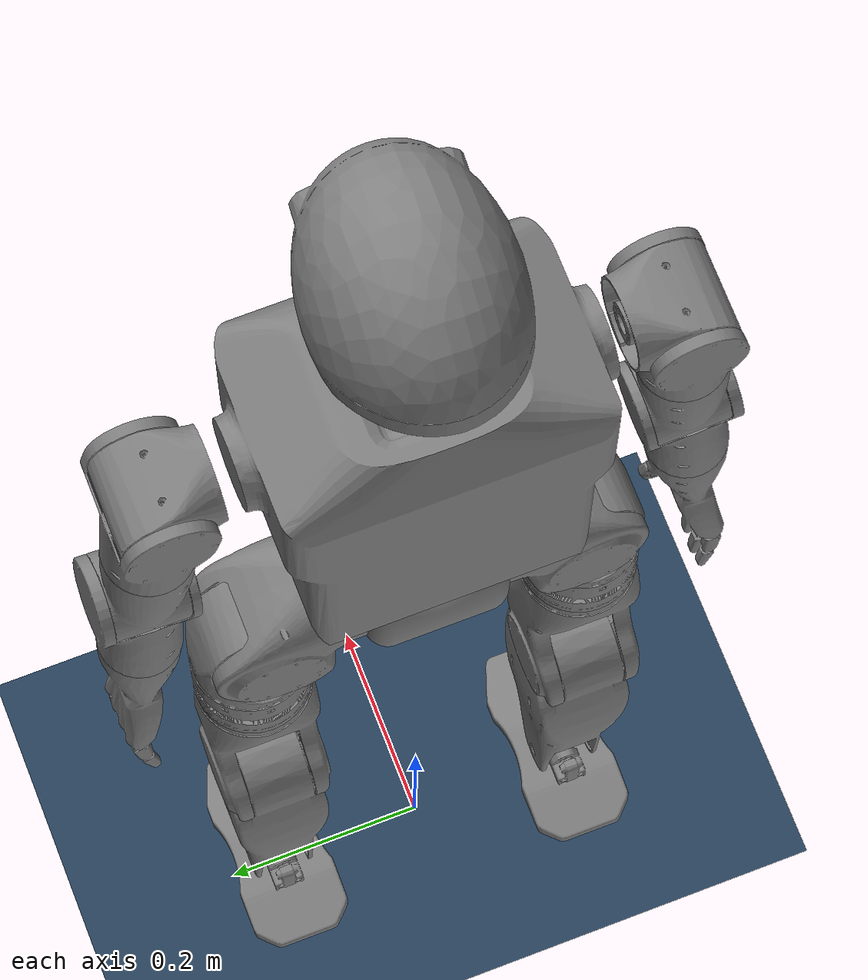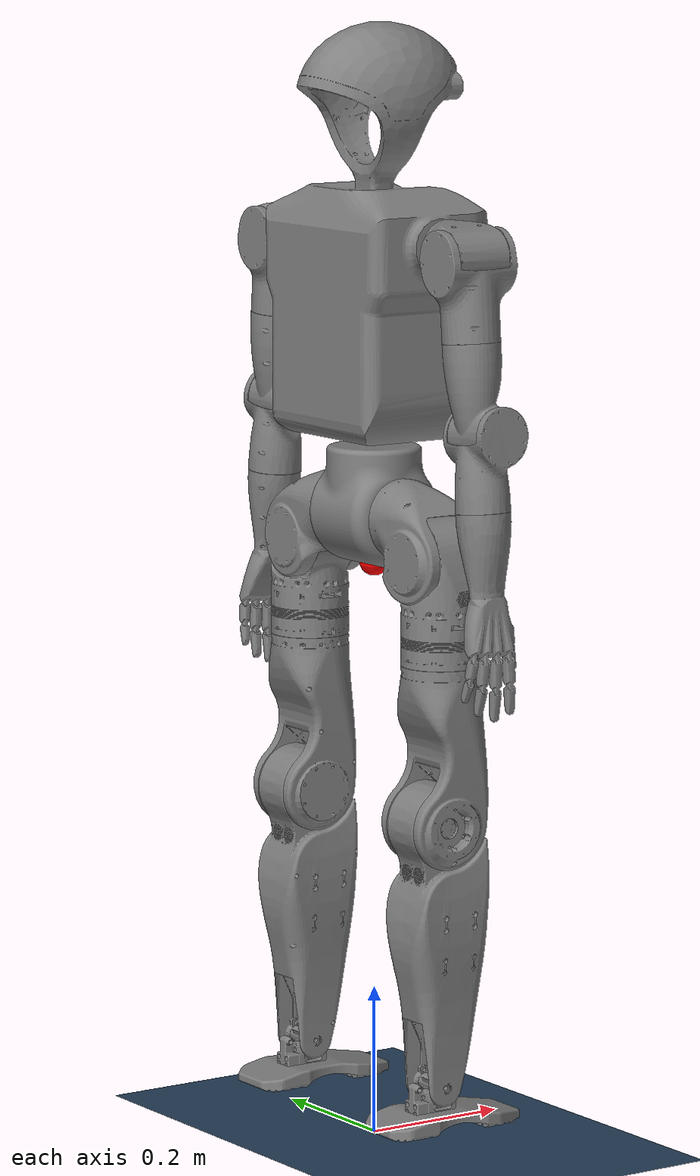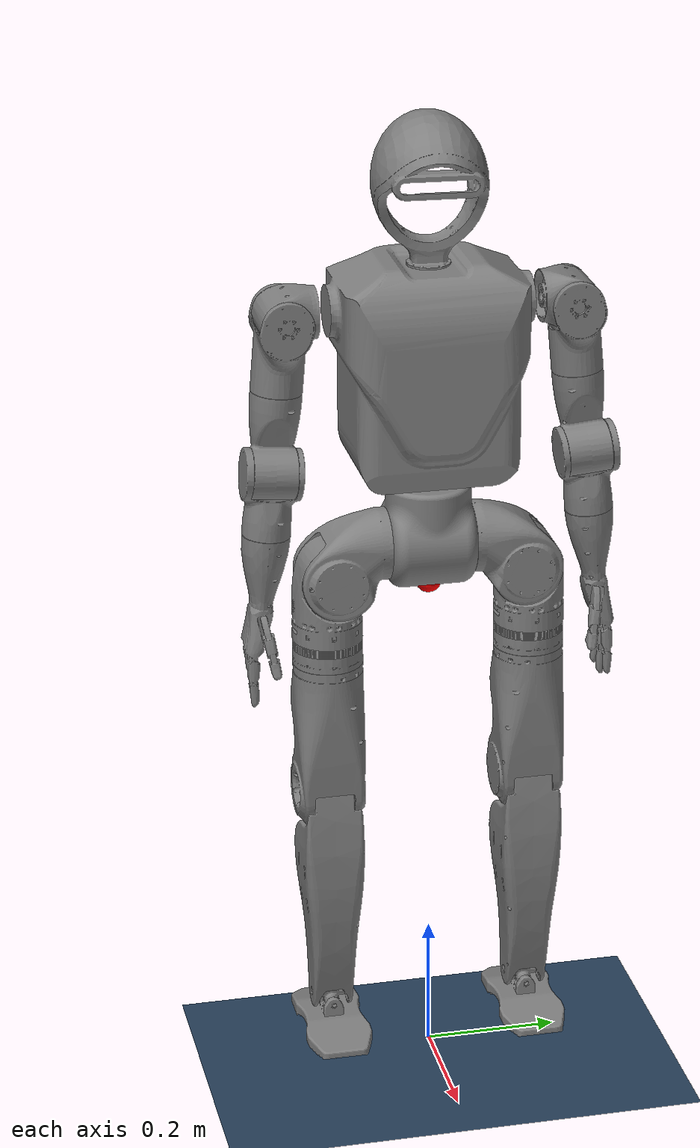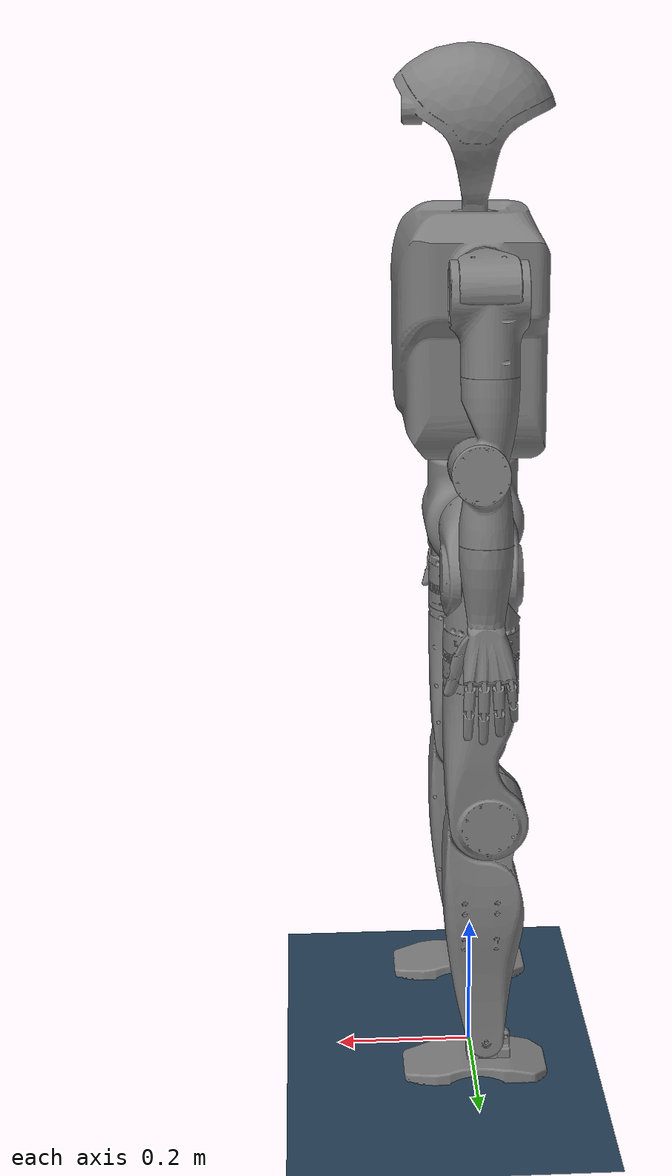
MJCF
<mujoco model="sr02h_v1">
  <compiler angle="radian" meshdir="../meshes/"/>
  <statistic meansize="0.201559" extent="2.948112" center="0.00499457 0 0.337764"/>

  <default>
    <joint limited="true" damping="0.01" armature="0.01" frictionloss="0.01" />
    <equality solref="0.001 2" />
    <default class="visual">
      <geom type="mesh" contype="0" conaffinity="0" group="2" density="0"/>
    </default>
    <default class="collision">
        <geom group="1" priority="1" rgba="0.89804 0.91765 0.92941 0" friction="1. 1.0 1.0" density="0"/>
    </default>
    <geom  condim='4' contype="1" conaffinity="15" solref='0.001 2' friction='0.9 0.2 0.2'/>
  </default>

  <asset>
    <!-- Set ground -->
    <texture name="grid" type="2d" builtin="checker" width="512" height="512" rgb1=".1 .2 .3" rgb2=".2 .3 .4"/>
    <material name="grid" texture="grid" texrepeat="1 1" texuniform="true" reflectance=".2"/>
  </asset>

  <option timestep="0.001" integrator="RK4">
    <flag frictionloss="enable" />
  </option>

  <asset>
    <material name="metal" rgba=".9 .95 .95 1"/>
    <material name="black" rgba="0 0 0 1"/>
    <material name="white" rgba="1 1 1 1"/>
    <material name="gray" rgba="0.4 0.4 0.4 1"/>
    <material name="transparent" rgba="0.5 0.5 0.5 1"/>
    <mesh name="base_link" file="base_link.STL"/>
    <mesh name="left_hip_pitch" file="left_hip_pitch.STL"/>
    <mesh name="left_hip_roll" file="left_hip_roll.STL"/>
    <mesh name="left_hip_yaw" file="left_hip_yaw.STL"/>
    <mesh name="left_knee" file="left_knee.STL"/>
    <mesh name="left_ankle_pitch" file="left_ankle_pitch.STL"/>
    <mesh name="left_ankle_roll" file="left_ankle_roll.STL"/>
    <mesh name="right_hip_pitch" file="right_hip_pitch.STL"/>
    <mesh name="right_hip_roll" file="right_hip_roll.STL"/>
    <mesh name="right_hip_yaw" file="right_hip_yaw.STL"/>
    <mesh name="right_knee" file="right_knee.STL"/>
    <mesh name="right_ankle_pitch" file="right_ankle_pitch.STL"/>
    <mesh name="right_ankle_roll" file="right_ankle_roll.STL"/>
    <mesh name="upper_body" file="upper_body.STL"/>
    <mesh name="left_shoulder_pitch" file="left_shoulder_pitch.STL"/>
    <mesh name="left_shoulder_roll" file="left_shoulder_roll.STL"/>
    <mesh name="left_shoulder_yaw" file="left_shoulder_yaw.STL"/>
    <mesh name="left_elbow_pitch" file="left_elbow_pitch.STL"/>
    <mesh name="left_elbow_yaw" file="left_elbow_yaw.STL"/>
    <mesh name="right_shoulder_pitch" file="right_shoulder_pitch.STL"/>
    <mesh name="right_shoulder_roll" file="right_shoulder_roll.STL"/>
    <mesh name="right_shoulder_yaw" file="right_shoulder_yaw.STL"/>
    <mesh name="right_elbow_pitch" file="right_elbow_pitch.STL"/>
    <mesh name="right_elbow_yaw" file="right_elbow_yaw.STL"/>
    <mesh name="head" file="head.STL"/>
  </asset>

  <worldbody>
    <light name="main_light" diffuse="2 2 2" specular="0.5 0.5 0.5" pos="0 0 40" dir="0 0 -1" castshadow="true"/>
    <!-- Auxiliary Light Sources-->
    <light name="aux_light1" diffuse=".8 .8 .8" pos=" 10 0 1" dir="-1 0 0" castshadow="false"/>
    <light name="aux_light2" diffuse=".8 .8 .8" pos="-10 0 1" dir=" 1 0 0" castshadow="false"/>
    <light name="aux_light3" diffuse=".8 .8 .8" pos="0  10 1" dir="0 -1 0" castshadow="false"/>
    <light name="aux_light4" diffuse=".8 .8 .8" pos="0 -10 1" dir="0  1 0" castshadow="false"/>
    <geom name="floor" type="plane" size="0 0 0.05" material="grid"/>

    <body name="base_link" pos="0 0 0.78">
      <freejoint/>
      <inertial pos="-0.00016099 4.8814e-06 0.086352" quat="0.503386 0.496667 0.495428 0.504456" mass="3.47645" diaginertia="0.0062779 0.00569814 0.00551335"/>
      <geom type="mesh" class="visual" mesh="base_link"/>
      <site name="imu_site" pos="0 0 0" size="0.02" rgba="1 0 0 1" type="sphere" />
      <site name='imu' size='0.01' pos='0.0 0 0.0'/>

      <body name="left_hip_pitch_link" pos="0 0.058 0.064402">
        <inertial pos="0.00279811 0.0590227 -0.0230549" quat="0.635667 0.294909 -0.25916 0.664675" mass="0.765649" diaginertia="0.00273954 0.00226518 0.00179678"/>
        <joint name="left_hip_pitch_joint" pos="0 0 0" axis="0 1 0" range="-1.57 1.57" actuatorfrcrange="-200 200"/>
        <geom type="mesh" class="visual" mesh="left_hip_pitch"/>
        <body name="left_hip_roll_link" pos="0.02925 0.083 -0.045">
          <inertial pos="-0.0287468 0.00686267 -0.0500657" quat="0.998029 0.0627218 0.00169713 0.000589256" mass="2.1935" diaginertia="0.00872027 0.0081648 0.00302264"/>
          <joint name="left_hip_roll_joint" pos="0 0 0" axis="1 0 0" range="-0.5 1.48" actuatorfrcrange="-200 200"/>
          <geom type="mesh" class="visual" mesh="left_hip_roll"/>
          <body name="left_hip_yaw_link" pos="-0.02925 0.012546 -0.132">
            <inertial pos="0.000859034 0.0027923 -0.123047" quat="0.999791 -0.00555855 0.0188583 -0.00555928" mass="0.997693" diaginertia="0.00858731 0.00821025 0.00230384"/>
            <joint name="left_hip_yaw_joint" pos="0 0 0" axis="0 0 1" range="-2.56 2.56" actuatorfrcrange="-200 200"/>
            <geom type="mesh" class="visual" mesh="left_hip_yaw"/>
            <body name="left_knee_link" pos="-0.010001 0 -0.2165">
              <inertial pos="0.00380647 0.00059334 -0.0787131" quat="0.704094 -0.0019289 -0.00205998 0.710101" mass="3.18942" diaginertia="0.0344715 0.0333337 0.00411457"/>
              <joint name="left_knee_joint" pos="0 0 0" axis="0 1 0" range="-0.2 2.55" actuatorfrcrange="-200 200"/>
              <geom type="mesh" class="visual" mesh="left_knee"/>
              <body name="left_ankle_pitch_link" pos="0 0 -0.35">
                <inertial pos="0.00113045 0 -0.00399755" quat="0.500022 0.499956 -0.500017 0.500004" mass="0.2" diaginertia="4.3137e-05 2.9623e-05 2.6222e-05"/>
                <joint name="left_ankle_pitch_joint" pos="0 0 0" axis="0 1 0" range="-0.92 0.61" actuatorfrcrange="-200 200"/>
                <geom type="mesh" class="visual" mesh="left_ankle_pitch"/>
                <body name="left_ankle_roll_link" pos="0 0 -0.016">
                  <inertial pos="0.006 -2.45147e-05 -0.0216902" quat="0.707793 0.00726632 0.706347 -0.00707932" mass="0.528202" diaginertia="0.00271856 0.0024795 0.00038654"/>
                  <joint name="left_ankle_roll_joint" pos="0 0 0" axis="1 0 0" range="-0.8 0.8" actuatorfrcrange="-200 200"/>
                  <geom type="mesh" class="visual" mesh="left_ankle_roll"/>
                  <geom type="mesh" class="collision" mesh="left_ankle_roll"/>
                </body>
              </body>
            </body>
          </body>
        </body>
      </body>
      <body name="right_hip_pitch_link" pos="0 -0.058 0.064402">
        <inertial pos="0.00275303 -0.0589431 -0.0230019" quat="0.295135 0.635489 -0.66474 0.259172" mass="0.765633" diaginertia="0.0027395 0.0022653 0.00179669"/>
        <joint name="right_hip_pitch_joint" pos="0 0 0" axis="0 1 0" range="-1.57 1.57" actuatorfrcrange="-200 200"/>
        <geom type="mesh" class="visual" mesh="right_hip_pitch"/>
        <body name="right_hip_roll_link" pos="0.02925 -0.083 -0.045">
          <inertial pos="-0.0287405 -0.00684507 -0.0500719" quat="0.998043 -0.0625016 0.00171536 -0.000407591" mass="2.19349" diaginertia="0.00871957 0.00816402 0.00302271"/>
          <joint name="right_hip_roll_joint" pos="0 0 0" axis="1 0 0" range="-1.48 0.5" actuatorfrcrange="-200 200"/>
          <geom type="mesh" class="visual" mesh="right_hip_roll"/>
          <body name="right_hip_yaw_link" pos="-0.02925 -0.012498 -0.132">
            <inertial pos="0.000860684 -0.00280479 -0.123053" quat="0.999773 0.00558237 0.0198002 0.00545366" mass="0.978452" diaginertia="0.00853411 0.00815256 0.00225813"/>
            <joint name="right_hip_yaw_joint" pos="0 0 0" axis="0 0 1" range="-2.56 2.56" actuatorfrcrange="-200 200"/>
            <geom type="mesh" class="visual" mesh="right_hip_yaw"/>
            <body name="right_knee_link" pos="-0.010001 0 -0.2165">
              <inertial pos="0.00380647 -0.00059334 -0.0787131" quat="0.702284 0.000581247 -0.000340368 0.711896" mass="3.22332" diaginertia="0.0356009 0.0344374 0.00416784"/>
              <joint name="right_knee_joint" pos="0 0 0" axis="0 1 0" range="-0.2 2.55" actuatorfrcrange="-200 200"/>
              <geom type="mesh" class="visual" mesh="right_knee"/>
              <body name="right_ankle_pitch_link" pos="0 0 -0.35">
                <inertial pos="0.00111916 0 -0.00395618" quat="0.500017 0.500004 -0.500022 0.499956" mass="0.2" diaginertia="4.3137e-05 2.9623e-05 2.6222e-05"/>
                <joint name="right_ankle_pitch_joint" pos="0 0 0" axis="0 1 0" range="-0.92 0.61" actuatorfrcrange="-200 200"/>
                <geom type="mesh" class="visual" mesh="right_ankle_pitch"/>
                <body name="right_ankle_roll_link" pos="0 0 -0.015999">
                  <inertial pos="0.006 -2.45147e-05 -0.0216902" quat="0.707793 0.00726632 0.706347 -0.00707932" mass="0.528202" diaginertia="0.00271856 0.0024795 0.00038654"/>
                  <joint name="right_ankle_roll_joint" pos="0 0 0" axis="1 0 0" range="-0.8 0.8" actuatorfrcrange="-200 200"/>
                  <geom type="mesh" class="visual" mesh="right_ankle_roll"/>
                  <geom type="mesh" class="collision" mesh="right_ankle_roll"/>
                </body>
              </body>
            </body>
          </body>
        </body>
      </body>
      <body name="waist_link" pos="0 0 0.1699">
        <inertial pos="0.0050879 4.5814e-05 0.16257" quat="0.999967 -0.00176402 -0.00792572 -0.000570994" mass="18.4507" diaginertia="0.167495 0.139809 0.108815"/>
        <joint name="waist_joint" pos="0 0 0" axis="0 0 1" range="-2.13 2.13" actuatorfrcrange="-200 200"/>
        <geom type="mesh" class="visual" mesh="upper_body"/>
        <geom size="0.2 0.175 0.3" pos="0 0 0.2" type="box" class="collision"/>
        <!-- Depth camera, same mounting pose and fov as the training config
             (fovx 91 / fovy 60 on 64x36 -> MuJoCo fovy 60). -->
        <camera name="depth_camera" pos="0.12380269 -0.0475 0.22030226"
                euler="0 -0.6981320 -1.5707963" mode="fixed" fovy="60"/>
        <body name="left_shoulder_pitch_link" pos="0 0.1665 0.2571">
          <inertial pos="0.00344718 0.0423351 -0.00711074" quat="0.843856 0.0101112 0.0292772 0.535674" mass="0.694216" diaginertia="0.000615881 0.000567583 0.000517536"/>
          <joint name="left_shoulder_pitch_joint" pos="0 0 0" axis="0 1 0" range="-3.14 0.79" actuatorfrcrange="-200 200"/>
          <geom type="mesh" class="visual" mesh="left_shoulder_pitch"/>
          <body name="left_shoulder_roll_link" pos="0.04075 0.046 -0.008">
            <inertial pos="-0.0432706 0.00701098 -0.0598413" quat="0.71124 8.00439e-05 0.000546331 0.702949" mass="0.746183" diaginertia="0.00112597 0.00112597 0.00112597"/>
            <joint name="left_shoulder_roll_joint" pos="0 0 0" axis="1 0 0" range="-0.19 1.9" actuatorfrcrange="-200 200"/>
            <geom type="mesh" class="visual" mesh="left_shoulder_roll"/>
            <body name="left_shoulder_yaw_link" pos="-0.043 0.011038 -0.10895" quat="0.999048 0.0436192 0 0">
              <inertial pos="0.0112065 -0.000982862 -0.0977927" quat="0.598219 0.0452388 -0.0651491 0.797397" mass="0.703549" diaginertia="0.00157655 0.00152585 0.000507596"/>
              <joint name="left_shoulder_yaw_joint" pos="0 0 0" axis="0 0 1" range="-2.27 2.27" actuatorfrcrange="-200 200"/>
              <geom type="mesh" class="visual" mesh="left_shoulder_yaw"/>
              <body name="left_elbow_pitch_link" pos="0.015164 -0.034428 -0.119">
                <inertial pos="-0.00854578 0.0363085 -0.0544777" quat="0.5 0.5 -0.5 0.5" mass="0.637811" diaginertia="0.0008168 0.0005975 0.0005157"/>
                <joint name="left_elbow_pitch_joint" pos="0 0 0" axis="0 1 0" range="-2.32 0.52" actuatorfrcrange="-200 200"/>
                <geom type="mesh" class="visual" mesh="left_elbow_pitch"/>
                <body name="left_elbow_yaw_link" pos="-0.010169 0.035352 -0.1">
                  <inertial pos="0.000193821 0.00135316 -0.100679" quat="0.707107 0 0 0.707107" mass="0.354681" diaginertia="0.0011323 0.0011202 0.0003334"/>
                  <joint name="left_elbow_yaw_joint" pos="0 0 0" axis="0 0 1" range="-2.62 2.62" actuatorfrcrange="-200 200"/>
                  <geom type="mesh" class="visual" mesh="left_elbow_yaw"/>
                </body>
              </body>
            </body>
          </body>
        </body>
        <body name="right_shoulder_pitch_link" pos="0 -0.1665 0.2571">
          <inertial pos="0.00354004 -0.041889 -0.01071" quat="0.536947 0.0214037 0.0390001 0.842442" mass="0.681333" diaginertia="0.000615738 0.000567862 0.0005174"/>
          <joint name="right_shoulder_pitch_joint" pos="0 0 0" axis="0 1 0" range="-3.14 0.79" actuatorfrcrange="-200 200"/>
          <geom type="mesh" class="visual" mesh="right_shoulder_pitch"/>
          <body name="right_shoulder_roll_link" pos="0.04075 -0.046 -0.008">
            <inertial pos="-0.043081 -0.00701174 -0.0597939" quat="0.71124 8.00439e-05 0.000546331 0.702949" mass="0.740047" diaginertia="0.00112597 0.00112597 0.00112597"/>
            <joint name="right_shoulder_roll_joint" pos="0 0 0" axis="1 0 0" range="-1.9 0.19" actuatorfrcrange="-200 200"/>
            <geom type="mesh" class="visual" mesh="right_shoulder_roll"/>
            <body name="right_shoulder_yaw_link" pos="-0.043 -0.011038 -0.10895" quat="0.999048 -0.0436192 0 0">
              <inertial pos="0.011211 -0.00749887 -0.0980614" quat="0.797397 -0.0651491 0.0452388 0.598219" mass="0.697149" diaginertia="0.00157655 0.00152585 0.000507596"/>
              <joint name="right_shoulder_yaw_joint" pos="0 0 0" axis="0 0 1" range="-2.27 2.27" actuatorfrcrange="-200 200"/>
              <geom type="mesh" class="visual" mesh="right_shoulder_yaw"/>
              <body name="right_elbow_pitch_link" pos="0.015164 0.034428 -0.119">
                <inertial pos="-0.00831411 -0.0409275 -0.0509462" quat="0.5 0.5 -0.5 0.5" mass="0.630886" diaginertia="0.0008168 0.0005975 0.0005157"/>
                <joint name="right_elbow_pitch_joint" pos="0 0 0" axis="0 1 0" range="-2.32 0.52" actuatorfrcrange="-200 200"/>
                <geom type="mesh" class="visual" mesh="right_elbow_pitch"/>
                <body name="right_elbow_yaw_link" pos="-0.010169 -0.035352 -0.1">
                  <inertial pos="0.000193054 -0.0100877 -0.102025" quat="0.707107 0 0 0.707107" mass="0.345282" diaginertia="0.0011323 0.0011202 0.0003334"/>
                  <joint name="right_elbow_yaw_joint" pos="0 0 0" axis="0 0 1" range="-2.62 2.62" actuatorfrcrange="-200 200"/>
                  <geom type="mesh" class="visual" mesh="right_elbow_yaw"/>
                </body>
              </body>
            </body>
          </body>
        </body>
        <body name="head_link" pos="0 0 0.3401">
          <inertial pos="0.010687 -0.00052293 0.081441" quat="0.713122 0.167422 0.165155 0.660417" mass="0.9238" diaginertia="0.00486206 0.00455249 0.00376545"/>
          <joint name="head_joint" pos="0 0 0" axis="0 0 1" range="-1.5 1.5" actuatorfrcrange="-200 200"/>
          <geom type="mesh" class="visual" mesh="head"/>
        </body>
      </body>
    </body>
  </worldbody>

  <actuator>
    <motor name="left_hip_pitch_joint"   joint="left_hip_pitch_joint"   gear="1" ctrllimited="true" ctrlrange="-200 200"/>
    <motor name="left_hip_roll_joint"  joint="left_hip_roll_joint"  gear="1" ctrllimited="true" ctrlrange="-200 200"/>
    <motor name="left_hip_yaw_joint"  joint="left_hip_yaw_joint"  gear="1" ctrllimited="true" ctrlrange="-200 200"/>
    <motor name="left_knee_joint"  joint="left_knee_joint"  gear="1" ctrllimited="true" ctrlrange="-200 200"/>
    <motor name="left_ankle_pitch_joint"   joint="left_ankle_pitch_joint"   gear="1" ctrllimited="true" ctrlrange="-200 200"/>
    <motor name="left_ankle_roll_joint"  joint="left_ankle_roll_joint"  gear="1" ctrllimited="true" ctrlrange="-200 200"/>

    <motor name="right_hip_pitch_joint"  joint="right_hip_pitch_joint"  gear="1" ctrllimited="true" ctrlrange="-200 200"/>
    <motor name="right_hip_roll_joint"  joint="right_hip_roll_joint"  gear="1" ctrllimited="true" ctrlrange="-200 200"/>
    <motor name="right_hip_yaw_joint"  joint="right_hip_yaw_joint"  gear="1" ctrllimited="true" ctrlrange="-200 200"/>
    <motor name="right_knee_joint"  joint="right_knee_joint"  gear="1" ctrllimited="true" ctrlrange="-200 200"/>
    <motor name="right_ankle_pitch_joint"   joint="right_ankle_pitch_joint"   gear="1" ctrllimited="true" ctrlrange="-200 200"/>
    <motor name="right_ankle_roll_joint"  joint="right_ankle_roll_joint"  gear="1" ctrllimited="true" ctrlrange="-200 200"/>

    <motor name="waist_joint"  joint="waist_joint"  gear="1" ctrllimited="true" ctrlrange="-200 200"/>

    <motor name="left_shoulder_pitch_joint"  joint="left_shoulder_pitch_joint"  gear="1" ctrllimited="true" ctrlrange="-200 200"/>
    <motor name="left_shoulder_roll_joint"  joint="left_shoulder_roll_joint"  gear="1" ctrllimited="true" ctrlrange="-200 200"/>
    <motor name="left_shoulder_yaw_joint"  joint="left_shoulder_yaw_joint"  gear="1" ctrllimited="true" ctrlrange="-200 200"/>
    <motor name="left_elbow_pitch_joint"  joint="left_elbow_pitch_joint"  gear="1" ctrllimited="true" ctrlrange="-200 200"/>
    <motor name="left_elbow_yaw_joint"  joint="left_elbow_yaw_joint"  gear="1" ctrllimited="true" ctrlrange="-200 200"/>

    <motor name="right_shoulder_pitch_joint"  joint="right_shoulder_pitch_joint"  gear="1" ctrllimited="true" ctrlrange="-200 200"/>
    <motor name="right_shoulder_roll_joint"  joint="right_shoulder_roll_joint"  gear="1" ctrllimited="true" ctrlrange="-200 200"/>
    <motor name="right_shoulder_yaw_joint"  joint="right_shoulder_yaw_joint"  gear="1" ctrllimited="true" ctrlrange="-200 200"/>
    <motor name="right_elbow_pitch_joint"  joint="right_elbow_pitch_joint"  gear="1" ctrllimited="true" ctrlrange="-200 200"/>
    <motor name="right_elbow_yaw_joint"  joint="right_elbow_yaw_joint"  gear="1" ctrllimited="true" ctrlrange="-200 200"/>

    <motor name="head_joint"  joint="head_joint"  gear="1" ctrllimited="true" ctrlrange="-200 200"/>

  </actuator>

  <sensor>
    <accelerometer name="imu_acc" site="imu_site" />
    <gyro name="imu_gyro" site="imu_site" />
    <framepos name="imu_pos" objtype="site" objname="imu_site" />
    <framelinvel name="imu_linvel" objtype="site" objname="imu_site" />

    <framequat     name='orientation' objtype='site' noise='0.001' objname='imu'/>
    <framepos     name='position' objtype='site' noise='0.001' objname='imu'/>
    <gyro          name='angular-velocity'    site='imu' noise='0.005' cutoff='34.9'/>
    <velocimeter   name='linear-velocity'     site='imu' noise='0.001' cutoff='30'/>
    <accelerometer name='linear-acceleration' site='imu' noise='0.005' cutoff='157'/>
    <magnetometer  name='magnetometer'        site='imu'/>
  </sensor>

</mujoco>
